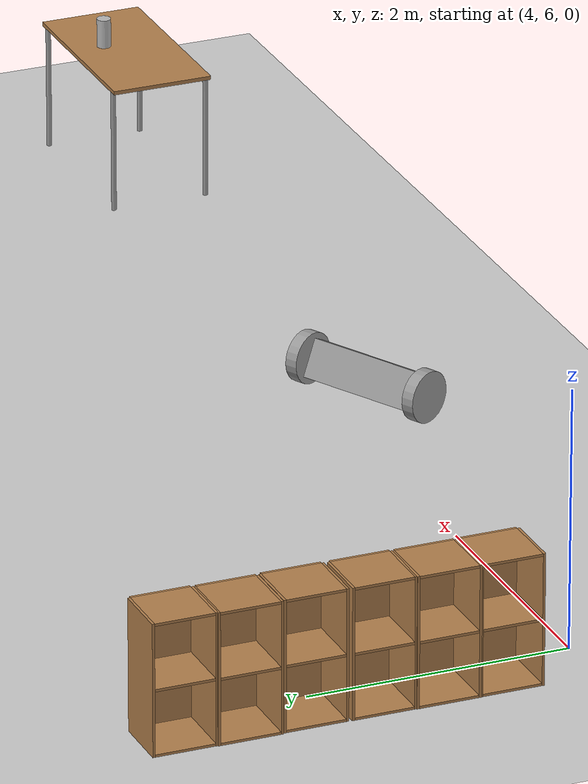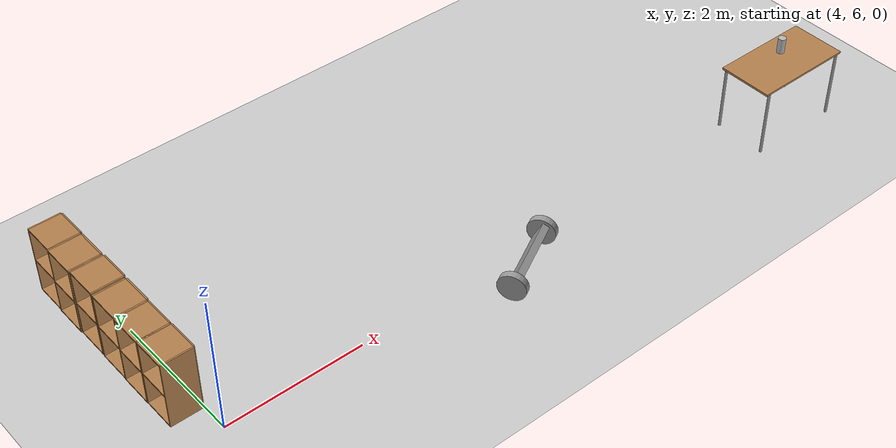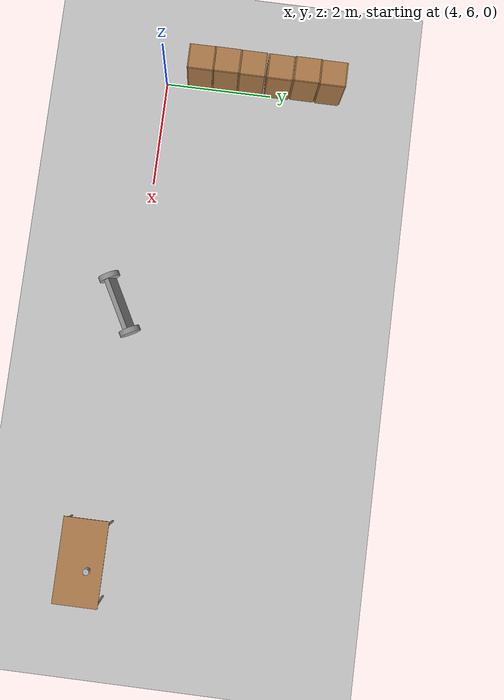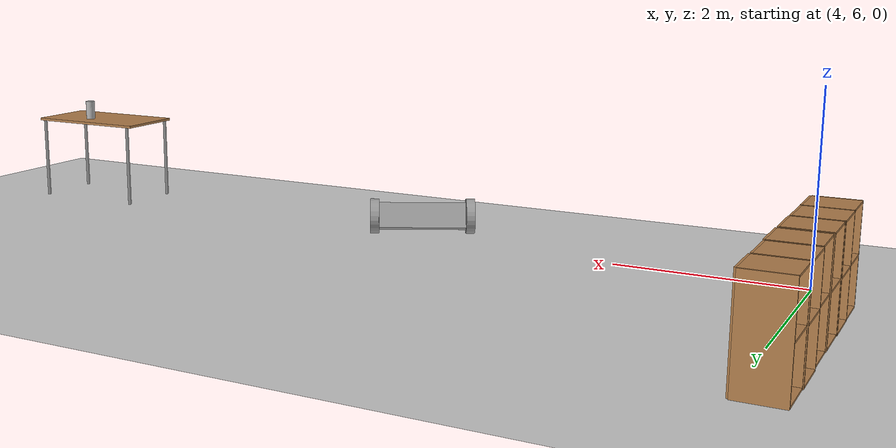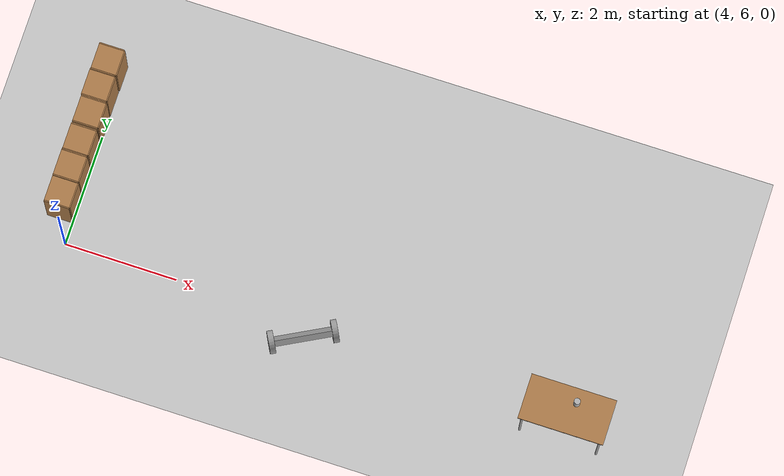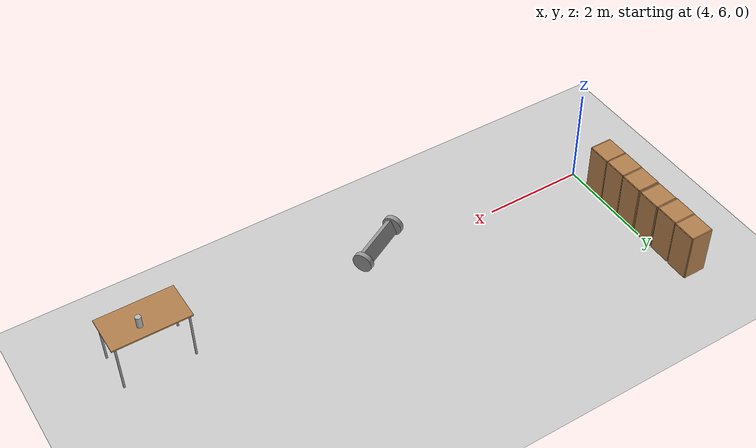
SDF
<sdf version="1.6">
 <world name="default">
  <model name="ground_plane">
   <static>1</static>
   <link name="link">
    <collision name="collision">
     <geometry><plane><normal>0 0 1</normal><size>100 100</size></plane></geometry>
     <surface>
      <contact><collide_bitmask>65535</collide_bitmask></contact>
      <friction><ode><mu>100</mu><mu2>50</mu2></ode></friction>
     </surface>
    </collision>
    <visual name="visual">
     <cast_shadows>0</cast_shadows>
     <geometry><plane><normal>0 0 1</normal><size>100 100</size></plane></geometry>
     <material>
      <script><uri>file://media/materials/scripts/gazebo.material</uri><name>Gazebo/Grey</name></script>
     </material>
    </visual>
   </link>
  </model>
  <model name="robot">
   <link name="link_0">
    <inertial>
     <mass>1</mass>
     <inertia>
      <ixx>0.166667</ixx>
      <ixy>0</ixy>
      <ixz>0</ixz>
      <iyy>0.166667</iyy>
      <iyz>0</iyz>
      <izz>0.166667</izz>
     </inertia>
     <pose>0 0 0.2 0 -0 0</pose>
    </inertial>
    <visual name="visual">
     <geometry><box><size>0.3 1 0.1</size></box></geometry>
     <material>
      <lighting>1</lighting>
      <script><uri>file://media/materials/scripts/gazebo.material</uri><name>Gazebo/Grey</name></script>
      <shader type="pixel"><normal_map>__default__</normal_map></shader>
      <ambient>0.3 0.3 0.3 1</ambient>
      <diffuse>0.7 0.7 0.7 1</diffuse>
      <specular>0.01 0.01 0.01 1</specular>
      <emissive>0 0 0 1</emissive>
     </material>
    </visual>
    <collision name="collision">
     <geometry><box><size>0.3 1 0.1</size></box></geometry>
     <surface>
      <friction>
       <ode><mu>1</mu><mu2>1</mu2><fdir1>0 0 0</fdir1><slip1>0</slip1><slip2>0</slip2></ode>
       <torsional>
        <coefficient>1</coefficient>
        <patch_radius>0</patch_radius>
        <surface_radius>0</surface_radius>
        <use_patch_radius>1</use_patch_radius>
        <ode><slip>0</slip></ode>
       </torsional>
      </friction>
      <bounce><restitution_coefficient>0</restitution_coefficient><threshold>1e+06</threshold></bounce>
      <contact>
       <collide_without_contact>0</collide_without_contact>
       <collide_without_contact_bitmask>1</collide_without_contact_bitmask>
       <collide_bitmask>1</collide_bitmask>
       <ode>
        <soft_cfm>0</soft_cfm>
        <soft_erp>0.2</soft_erp>
        <kp>1e+13</kp>
        <kd>1</kd>
        <max_vel>0.01</max_vel>
        <min_depth>0</min_depth>
       </ode>
       <bullet>
        <split_impulse>1</split_impulse>
        <split_impulse_penetration_threshold>-0.01</split_impulse_penetration_threshold>
        <soft_cfm>0</soft_cfm>
        <soft_erp>0.2</soft_erp>
        <kp>1e+13</kp>
        <kd>1</kd>
       </bullet>
      </contact>
     </surface>
    </collision>
   </link>
   <link name="link_2">
    <pose>0 -0.550019 0 1.5707 -0 0</pose>
    <inertial>
     <mass>1</mass>
     <inertia><ixx>0.145833</ixx><ixy>0</ixy><ixz>0</ixz><iyy>0.145833</iyy><iyz>0</iyz><izz>0.125</izz></inertia>
    </inertial>
    <visual name="visual">
     <geometry><cylinder><radius>0.2</radius><length>0.1</length></cylinder></geometry>
     <material>
      <lighting>1</lighting>
      <script><uri>file://media/materials/scripts/gazebo.material</uri><name>Gazebo/Grey</name></script>
      <shader type="pixel"><normal_map>__default__</normal_map></shader>
      <ambient>0.3 0.3 0.3 1</ambient>
      <diffuse>0.7 0.7 0.7 1</diffuse>
      <specular>0.01 0.01 0.01 1</specular>
      <emissive>0 0 0 1</emissive>
     </material>
    </visual>
    <collision name="collision">
     <geometry><cylinder><radius>0.2</radius><length>0.1</length></cylinder></geometry>
     <surface>
      <friction>
       <ode><mu>1</mu><mu2>1</mu2><fdir1>0 0 0</fdir1><slip1>0</slip1><slip2>0</slip2></ode>
       <torsional>
        <coefficient>1</coefficient>
        <patch_radius>0</patch_radius>
        <surface_radius>0</surface_radius>
        <use_patch_radius>1</use_patch_radius>
        <ode><slip>0</slip></ode>
       </torsional>
      </friction>
      <bounce><restitution_coefficient>0</restitution_coefficient><threshold>1e+06</threshold></bounce>
      <contact>
       <collide_without_contact>0</collide_without_contact>
       <collide_without_contact_bitmask>1</collide_without_contact_bitmask>
       <collide_bitmask>1</collide_bitmask>
       <ode>
        <soft_cfm>0</soft_cfm>
        <soft_erp>0.2</soft_erp>
        <kp>1e+13</kp>
        <kd>1</kd>
        <max_vel>0.01</max_vel>
        <min_depth>0</min_depth>
       </ode>
       <bullet>
        <split_impulse>1</split_impulse>
        <split_impulse_penetration_threshold>-0.01</split_impulse_penetration_threshold>
        <soft_cfm>0</soft_cfm>
        <soft_erp>0.2</soft_erp>
        <kp>1e+13</kp>
        <kd>1</kd>
       </bullet>
      </contact>
     </surface>
    </collision>
   </link>
   <link name="link_2_clone">
    <pose>0 0.550019 0 1.5707 -0 0</pose>
    <inertial>
     <mass>1</mass>
     <inertia><ixx>0.145833</ixx><ixy>0</ixy><ixz>0</ixz><iyy>0.145833</iyy><iyz>0</iyz><izz>0.125</izz></inertia>
    </inertial>
    <visual name="visual">
     <geometry><cylinder><radius>0.2</radius><length>0.1</length></cylinder></geometry>
     <material>
      <lighting>1</lighting>
      <script><uri>file://media/materials/scripts/gazebo.material</uri><name>Gazebo/Grey</name></script>
      <shader type="pixel"><normal_map>__default__</normal_map></shader>
      <ambient>0.3 0.3 0.3 1</ambient>
      <diffuse>0.7 0.7 0.7 1</diffuse>
      <specular>0.01 0.01 0.01 1</specular>
      <emissive>0 0 0 1</emissive>
     </material>
    </visual>
    <collision name="collision">
     <geometry><cylinder><radius>0.2</radius><length>0.1</length></cylinder></geometry>
     <surface>
      <friction>
       <ode><mu>1</mu><mu2>1</mu2><fdir1>0 0 0</fdir1><slip1>0</slip1><slip2>0</slip2></ode>
       <torsional>
        <coefficient>1</coefficient>
        <patch_radius>0</patch_radius>
        <surface_radius>0</surface_radius>
        <use_patch_radius>1</use_patch_radius>
        <ode><slip>0</slip></ode>
       </torsional>
      </friction>
      <bounce><restitution_coefficient>0</restitution_coefficient><threshold>1e+06</threshold></bounce>
      <contact>
       <collide_without_contact>0</collide_without_contact>
       <collide_without_contact_bitmask>1</collide_without_contact_bitmask>
       <collide_bitmask>1</collide_bitmask>
       <ode>
        <soft_cfm>0</soft_cfm>
        <soft_erp>0.2</soft_erp>
        <kp>1e+13</kp>
        <kd>1</kd>
        <max_vel>0.01</max_vel>
        <min_depth>0</min_depth>
       </ode>
       <bullet>
        <split_impulse>1</split_impulse>
        <split_impulse_penetration_threshold>-0.01</split_impulse_penetration_threshold>
        <soft_cfm>0</soft_cfm>
        <soft_erp>0.2</soft_erp>
        <kp>1e+13</kp>
        <kd>1</kd>
       </bullet>
      </contact>
     </surface>
    </collision>
   </link>
   <joint name="link_0_JOINT_0" type="revolute">
    <parent>link_0</parent>
    <child>link_2</child>
    <axis>
     <xyz>0 0 1</xyz>
     <use_parent_model_frame>0</use_parent_model_frame>
     <limit>
      <lower>-1.79769e+308</lower>
      <upper>1.79769e+308</upper>
      <effort>-1</effort>
      <velocity>-1</velocity>
     </limit>
     <dynamics>
      <spring_reference>0</spring_reference>
      <spring_stiffness>0</spring_stiffness>
      <damping>0</damping>
     </dynamics>
    </axis>
    <physics>
     <ode><limit><cfm>0</cfm><erp>0.2</erp></limit><suspension><cfm>0</cfm><erp>0.2</erp></suspension></ode>
    </physics>
   </joint>
   <joint name="link_0_JOINT_1" type="revolute">
    <parent>link_0</parent>
    <child>link_2_clone</child>
    <axis>
     <xyz>0 0 1</xyz>
     <use_parent_model_frame>0</use_parent_model_frame>
     <limit>
      <lower>-1.79769e+308</lower>
      <upper>1.79769e+308</upper>
      <effort>-1</effort>
      <velocity>-1</velocity>
     </limit>
     <dynamics>
      <spring_reference>0</spring_reference>
      <spring_stiffness>0</spring_stiffness>
      <damping>0</damping>
      <friction>0</friction>
     </dynamics>
    </axis>
    <physics>
     <ode><limit><cfm>0</cfm><erp>0.2</erp></limit><suspension><cfm>0</cfm><erp>0.2</erp></suspension></ode>
    </physics>
   </joint>
   <static>0</static>
   <pose>8.3951 5.68813 0.200001 6e-06 -1.10698 -1.07899</pose>
  </model>
  <model name="table">
   <static>1</static>
   <link name="link">
    <collision name="surface">
     <pose>0 0 1 0 -0 0</pose>
     <geometry><box><size>1.5 0.8 0.03</size></box></geometry>
     <surface><friction><ode><mu>0.6</mu><mu2>0.6</mu2></ode></friction></surface>
    </collision>
    <visual name="visual1">
     <pose>0 0 1 0 -0 0</pose>
     <geometry><box><size>1.5 0.8 0.03</size></box></geometry>
     <material>
      <script><uri>file://media/materials/scripts/gazebo.material</uri><name>Gazebo/Wood</name></script>
     </material>
    </visual>
    <collision name="front_left_leg">
     <pose>0.68 0.38 0.5 0 -0 0</pose>
     <geometry><cylinder><radius>0.02</radius><length>1</length></cylinder></geometry>
    </collision>
    <visual name="front_left_leg">
     <pose>0.68 0.38 0.5 0 -0 0</pose>
     <geometry><cylinder><radius>0.02</radius><length>1</length></cylinder></geometry>
     <material>
      <script><uri>file://media/materials/scripts/gazebo.material</uri><name>Gazebo/Grey</name></script>
     </material>
    </visual>
    <collision name="front_right_leg">
     <pose>0.68 -0.38 0.5 0 -0 0</pose>
     <geometry><cylinder><radius>0.02</radius><length>1</length></cylinder></geometry>
    </collision>
    <visual name="front_right_leg">
     <pose>0.68 -0.38 0.5 0 -0 0</pose>
     <geometry><cylinder><radius>0.02</radius><length>1</length></cylinder></geometry>
     <material>
      <script><uri>file://media/materials/scripts/gazebo.material</uri><name>Gazebo/Grey</name></script>
     </material>
    </visual>
    <collision name="back_right_leg">
     <pose>-0.68 -0.38 0.5 0 -0 0</pose>
     <geometry><cylinder><radius>0.02</radius><length>1</length></cylinder></geometry>
    </collision>
    <visual name="back_right_leg">
     <pose>-0.68 -0.38 0.5 0 -0 0</pose>
     <geometry><cylinder><radius>0.02</radius><length>1</length></cylinder></geometry>
     <material>
      <script><uri>file://media/materials/scripts/gazebo.material</uri><name>Gazebo/Grey</name></script>
     </material>
    </visual>
    <collision name="back_left_leg">
     <pose>-0.68 0.38 0.5 0 -0 0</pose>
     <geometry><cylinder><radius>0.02</radius><length>1</length></cylinder></geometry>
    </collision>
    <visual name="back_left_leg">
     <pose>-0.68 0.38 0.5 0 -0 0</pose>
     <geometry><cylinder><radius>0.02</radius><length>1</length></cylinder></geometry>
     <material>
      <script><uri>file://media/materials/scripts/gazebo.material</uri><name>Gazebo/Grey</name></script>
     </material>
    </visual>
   </link>
   <pose>13.0602 5.71724 0 0 -0 0</pose>
  </model>
  <model name="beer">
   <link name="link">
    <pose>0 0 0.115 0 -0 0</pose>
    <inertial>
     <mass>0.39</mass>
     <inertia><ixx>0.00058</ixx><ixy>0</ixy><ixz>0</ixz><iyy>0.00058</iyy><iyz>0</iyz><izz>0.00019</izz></inertia>
    </inertial>
    <collision name="collision">
     <geometry><cylinder><radius>0.055</radius><length>0.23</length></cylinder></geometry>
    </collision>
    <visual name="visual">
     <geometry><cylinder><radius>0.055</radius><length>0.23</length></cylinder></geometry>
     <material>
      <script>
       <uri>model://beer/materials/scripts</uri>
       <uri>model://beer/materials/textures</uri>
       <name>Beer/Diffuse</name>
      </script>
     </material>
    </visual>
   </link>
   <pose>13.1795 5.85442 1.01499 -1e-06 2.7e-05 -9e-06</pose>
  </model>
  <model name="cabinet">
   <static>1</static>
   <link name="cabinet_bottom_plate">
    <inertial>
     <pose>0 0 -1 0 -0 0</pose>
     <inertia><ixx>2.05</ixx><ixy>0</ixy><ixz>0</ixz><iyy>2.05</iyy><iyz>0</iyz><izz>2.05</izz></inertia>
     <mass>25</mass>
    </inertial>
    <collision name="cabinet_bottom_plate_geom">
     <pose>0 0 0.01 0 -0 0</pose>
     <geometry><box><size>0.45 0.45 0.02</size></box></geometry>
    </collision>
    <visual name="cabinet_bottom_plate_geom_visual">
     <pose>0 0 0.01 0 -0 0</pose>
     <geometry><box><size>0.45 0.45 0.02</size></box></geometry>
     <material>
      <script><uri>file://media/materials/scripts/gazebo.material</uri><name>Gazebo/Wood</name></script>
     </material>
    </visual>
    <collision name="cabinet_bottom_plate_geom_cabinet_back_plate">
     <pose>0.235 0 0.51 0 -0 0</pose>
     <geometry><box><size>0.02 0.45 1.02</size></box></geometry>
    </collision>
    <visual name="cabinet_bottom_plate_geom_cabinet_back_plate_visual">
     <pose>0.235 0 0.51 0 -0 0</pose>
     <geometry><box><size>0.02 0.45 1.02</size></box></geometry>
     <material>
      <script><uri>file://media/materials/scripts/gazebo.material</uri><name>Gazebo/Wood</name></script>
     </material>
    </visual>
    <collision name="cabinet_bottom_plate_geom_cabinet_left_plate">
     <pose>0 0.235 0.51 0 -0 0</pose>
     <geometry><box><size>0.45 0.02 1.02</size></box></geometry>
    </collision>
    <visual name="cabinet_bottom_plate_geom_cabinet_left_plate_visual">
     <pose>0 0.235 0.51 0 -0 0</pose>
     <geometry><box><size>0.45 0.02 1.02</size></box></geometry>
     <material>
      <script><uri>file://media/materials/scripts/gazebo.material</uri><name>Gazebo/Wood</name></script>
     </material>
    </visual>
    <collision name="cabinet_bottom_plate_geom_cabinet_middle_plate">
     <pose>0 0 0.51 0 -0 0</pose>
     <geometry><box><size>0.45 0.45 0.02</size></box></geometry>
    </collision>
    <visual name="cabinet_bottom_plate_geom_cabinet_middle_plate_visual">
     <pose>0 0 0.51 0 -0 0</pose>
     <geometry><box><size>0.45 0.45 0.02</size></box></geometry>
     <material>
      <script><uri>file://media/materials/scripts/gazebo.material</uri><name>Gazebo/Wood</name></script>
     </material>
    </visual>
    <collision name="cabinet_bottom_plate_geom_cabinet_right_plate">
     <pose>0 -0.235 0.51 0 -0 0</pose>
     <geometry><box><size>0.45 0.02 1.02</size></box></geometry>
    </collision>
    <visual name="cabinet_bottom_plate_geom_cabinet_right_plate_visual">
     <pose>0 -0.235 0.51 0 -0 0</pose>
     <geometry><box><size>0.45 0.02 1.02</size></box></geometry>
     <material>
      <script><uri>file://media/materials/scripts/gazebo.material</uri><name>Gazebo/Wood</name></script>
     </material>
    </visual>
    <collision name="cabinet_bottom_plate_geom_cabinet_top_plate">
     <pose>0 0 1.01 0 -0 0</pose>
     <geometry><box><size>0.45 0.45 0.02</size></box></geometry>
    </collision>
    <visual name="cabinet_bottom_plate_geom_cabinet_top_plate_visual">
     <pose>0 0 1.01 0 -0 0</pose>
     <geometry><box><size>0.45 0.45 0.02</size></box></geometry>
     <material>
      <script><uri>file://media/materials/scripts/gazebo.material</uri><name>Gazebo/Wood</name></script>
     </material>
    </visual>
   </link>
   <pose>3.76015 6.64203 0 0 -0 0</pose>
  </model>
  <model name="cabinet_clone">
   <static>1</static>
   <link name="cabinet_bottom_plate">
    <inertial>
     <pose>0 0 -1 0 -0 0</pose>
     <inertia><ixx>2.05</ixx><ixy>0</ixy><ixz>0</ixz><iyy>2.05</iyy><iyz>0</iyz><izz>2.05</izz></inertia>
     <mass>25</mass>
    </inertial>
    <collision name="cabinet_bottom_plate_geom">
     <pose>0 0 0.01 0 -0 0</pose>
     <geometry><box><size>0.45 0.45 0.02</size></box></geometry>
    </collision>
    <visual name="cabinet_bottom_plate_geom_visual">
     <pose>0 0 0.01 0 -0 0</pose>
     <geometry><box><size>0.45 0.45 0.02</size></box></geometry>
     <material>
      <script><uri>file://media/materials/scripts/gazebo.material</uri><name>Gazebo/Wood</name></script>
     </material>
    </visual>
    <collision name="cabinet_bottom_plate_geom_cabinet_back_plate">
     <pose>0.235 0 0.51 0 -0 0</pose>
     <geometry><box><size>0.02 0.45 1.02</size></box></geometry>
    </collision>
    <visual name="cabinet_bottom_plate_geom_cabinet_back_plate_visual">
     <pose>0.235 0 0.51 0 -0 0</pose>
     <geometry><box><size>0.02 0.45 1.02</size></box></geometry>
     <material>
      <script><uri>file://media/materials/scripts/gazebo.material</uri><name>Gazebo/Wood</name></script>
     </material>
    </visual>
    <collision name="cabinet_bottom_plate_geom_cabinet_left_plate">
     <pose>0 0.235 0.51 0 -0 0</pose>
     <geometry><box><size>0.45 0.02 1.02</size></box></geometry>
    </collision>
    <visual name="cabinet_bottom_plate_geom_cabinet_left_plate_visual">
     <pose>0 0.235 0.51 0 -0 0</pose>
     <geometry><box><size>0.45 0.02 1.02</size></box></geometry>
     <material>
      <script><uri>file://media/materials/scripts/gazebo.material</uri><name>Gazebo/Wood</name></script>
     </material>
    </visual>
    <collision name="cabinet_bottom_plate_geom_cabinet_middle_plate">
     <pose>0 0 0.51 0 -0 0</pose>
     <geometry><box><size>0.45 0.45 0.02</size></box></geometry>
    </collision>
    <visual name="cabinet_bottom_plate_geom_cabinet_middle_plate_visual">
     <pose>0 0 0.51 0 -0 0</pose>
     <geometry><box><size>0.45 0.45 0.02</size></box></geometry>
     <material>
      <script><uri>file://media/materials/scripts/gazebo.material</uri><name>Gazebo/Wood</name></script>
     </material>
    </visual>
    <collision name="cabinet_bottom_plate_geom_cabinet_right_plate">
     <pose>0 -0.235 0.51 0 -0 0</pose>
     <geometry><box><size>0.45 0.02 1.02</size></box></geometry>
    </collision>
    <visual name="cabinet_bottom_plate_geom_cabinet_right_plate_visual">
     <pose>0 -0.235 0.51 0 -0 0</pose>
     <geometry><box><size>0.45 0.02 1.02</size></box></geometry>
     <material>
      <script><uri>file://media/materials/scripts/gazebo.material</uri><name>Gazebo/Wood</name></script>
     </material>
    </visual>
    <collision name="cabinet_bottom_plate_geom_cabinet_top_plate">
     <pose>0 0 1.01 0 -0 0</pose>
     <geometry><box><size>0.45 0.45 0.02</size></box></geometry>
    </collision>
    <visual name="cabinet_bottom_plate_geom_cabinet_top_plate_visual">
     <pose>0 0 1.01 0 -0 0</pose>
     <geometry><box><size>0.45 0.45 0.02</size></box></geometry>
     <material>
      <script><uri>file://media/materials/scripts/gazebo.material</uri><name>Gazebo/Wood</name></script>
     </material>
    </visual>
   </link>
   <pose>3.75696 7.12211 0 0 -0 0</pose>
  </model>
  <model name="cabinet_clone_0">
   <static>1</static>
   <link name="cabinet_bottom_plate">
    <inertial>
     <pose>0 0 -1 0 -0 0</pose>
     <inertia><ixx>2.05</ixx><ixy>0</ixy><ixz>0</ixz><iyy>2.05</iyy><iyz>0</iyz><izz>2.05</izz></inertia>
     <mass>25</mass>
    </inertial>
    <collision name="cabinet_bottom_plate_geom">
     <pose>0 0 0.01 0 -0 0</pose>
     <geometry><box><size>0.45 0.45 0.02</size></box></geometry>
    </collision>
    <visual name="cabinet_bottom_plate_geom_visual">
     <pose>0 0 0.01 0 -0 0</pose>
     <geometry><box><size>0.45 0.45 0.02</size></box></geometry>
     <material>
      <script><uri>file://media/materials/scripts/gazebo.material</uri><name>Gazebo/Wood</name></script>
     </material>
    </visual>
    <collision name="cabinet_bottom_plate_geom_cabinet_back_plate">
     <pose>0.235 0 0.51 0 -0 0</pose>
     <geometry><box><size>0.02 0.45 1.02</size></box></geometry>
    </collision>
    <visual name="cabinet_bottom_plate_geom_cabinet_back_plate_visual">
     <pose>0.235 0 0.51 0 -0 0</pose>
     <geometry><box><size>0.02 0.45 1.02</size></box></geometry>
     <material>
      <script><uri>file://media/materials/scripts/gazebo.material</uri><name>Gazebo/Wood</name></script>
     </material>
    </visual>
    <collision name="cabinet_bottom_plate_geom_cabinet_left_plate">
     <pose>0 0.235 0.51 0 -0 0</pose>
     <geometry><box><size>0.45 0.02 1.02</size></box></geometry>
    </collision>
    <visual name="cabinet_bottom_plate_geom_cabinet_left_plate_visual">
     <pose>0 0.235 0.51 0 -0 0</pose>
     <geometry><box><size>0.45 0.02 1.02</size></box></geometry>
     <material>
      <script><uri>file://media/materials/scripts/gazebo.material</uri><name>Gazebo/Wood</name></script>
     </material>
    </visual>
    <collision name="cabinet_bottom_plate_geom_cabinet_middle_plate">
     <pose>0 0 0.51 0 -0 0</pose>
     <geometry><box><size>0.45 0.45 0.02</size></box></geometry>
    </collision>
    <visual name="cabinet_bottom_plate_geom_cabinet_middle_plate_visual">
     <pose>0 0 0.51 0 -0 0</pose>
     <geometry><box><size>0.45 0.45 0.02</size></box></geometry>
     <material>
      <script><uri>file://media/materials/scripts/gazebo.material</uri><name>Gazebo/Wood</name></script>
     </material>
    </visual>
    <collision name="cabinet_bottom_plate_geom_cabinet_right_plate">
     <pose>0 -0.235 0.51 0 -0 0</pose>
     <geometry><box><size>0.45 0.02 1.02</size></box></geometry>
    </collision>
    <visual name="cabinet_bottom_plate_geom_cabinet_right_plate_visual">
     <pose>0 -0.235 0.51 0 -0 0</pose>
     <geometry><box><size>0.45 0.02 1.02</size></box></geometry>
     <material>
      <script><uri>file://media/materials/scripts/gazebo.material</uri><name>Gazebo/Wood</name></script>
     </material>
    </visual>
    <collision name="cabinet_bottom_plate_geom_cabinet_top_plate">
     <pose>0 0 1.01 0 -0 0</pose>
     <geometry><box><size>0.45 0.45 0.02</size></box></geometry>
    </collision>
    <visual name="cabinet_bottom_plate_geom_cabinet_top_plate_visual">
     <pose>0 0 1.01 0 -0 0</pose>
     <geometry><box><size>0.45 0.45 0.02</size></box></geometry>
     <material>
      <script><uri>file://media/materials/scripts/gazebo.material</uri><name>Gazebo/Wood</name></script>
     </material>
    </visual>
   </link>
   <pose>3.76265 7.60728 0 0 -0 0</pose>
  </model>
  <model name="cabinet_clone_1">
   <static>1</static>
   <link name="cabinet_bottom_plate">
    <inertial>
     <pose>0 0 -1 0 -0 0</pose>
     <inertia><ixx>2.05</ixx><ixy>0</ixy><ixz>0</ixz><iyy>2.05</iyy><iyz>0</iyz><izz>2.05</izz></inertia>
     <mass>25</mass>
    </inertial>
    <collision name="cabinet_bottom_plate_geom">
     <pose>0 0 0.01 0 -0 0</pose>
     <geometry><box><size>0.45 0.45 0.02</size></box></geometry>
    </collision>
    <visual name="cabinet_bottom_plate_geom_visual">
     <pose>0 0 0.01 0 -0 0</pose>
     <geometry><box><size>0.45 0.45 0.02</size></box></geometry>
     <material>
      <script><uri>file://media/materials/scripts/gazebo.material</uri><name>Gazebo/Wood</name></script>
     </material>
    </visual>
    <collision name="cabinet_bottom_plate_geom_cabinet_back_plate">
     <pose>0.235 0 0.51 0 -0 0</pose>
     <geometry><box><size>0.02 0.45 1.02</size></box></geometry>
    </collision>
    <visual name="cabinet_bottom_plate_geom_cabinet_back_plate_visual">
     <pose>0.235 0 0.51 0 -0 0</pose>
     <geometry><box><size>0.02 0.45 1.02</size></box></geometry>
     <material>
      <script><uri>file://media/materials/scripts/gazebo.material</uri><name>Gazebo/Wood</name></script>
     </material>
    </visual>
    <collision name="cabinet_bottom_plate_geom_cabinet_left_plate">
     <pose>0 0.235 0.51 0 -0 0</pose>
     <geometry><box><size>0.45 0.02 1.02</size></box></geometry>
    </collision>
    <visual name="cabinet_bottom_plate_geom_cabinet_left_plate_visual">
     <pose>0 0.235 0.51 0 -0 0</pose>
     <geometry><box><size>0.45 0.02 1.02</size></box></geometry>
     <material>
      <script><uri>file://media/materials/scripts/gazebo.material</uri><name>Gazebo/Wood</name></script>
     </material>
    </visual>
    <collision name="cabinet_bottom_plate_geom_cabinet_middle_plate">
     <pose>0 0 0.51 0 -0 0</pose>
     <geometry><box><size>0.45 0.45 0.02</size></box></geometry>
    </collision>
    <visual name="cabinet_bottom_plate_geom_cabinet_middle_plate_visual">
     <pose>0 0 0.51 0 -0 0</pose>
     <geometry><box><size>0.45 0.45 0.02</size></box></geometry>
     <material>
      <script><uri>file://media/materials/scripts/gazebo.material</uri><name>Gazebo/Wood</name></script>
     </material>
    </visual>
    <collision name="cabinet_bottom_plate_geom_cabinet_right_plate">
     <pose>0 -0.235 0.51 0 -0 0</pose>
     <geometry><box><size>0.45 0.02 1.02</size></box></geometry>
    </collision>
    <visual name="cabinet_bottom_plate_geom_cabinet_right_plate_visual">
     <pose>0 -0.235 0.51 0 -0 0</pose>
     <geometry><box><size>0.45 0.02 1.02</size></box></geometry>
     <material>
      <script><uri>file://media/materials/scripts/gazebo.material</uri><name>Gazebo/Wood</name></script>
     </material>
    </visual>
    <collision name="cabinet_bottom_plate_geom_cabinet_top_plate">
     <pose>0 0 1.01 0 -0 0</pose>
     <geometry><box><size>0.45 0.45 0.02</size></box></geometry>
    </collision>
    <visual name="cabinet_bottom_plate_geom_cabinet_top_plate_visual">
     <pose>0 0 1.01 0 -0 0</pose>
     <geometry><box><size>0.45 0.45 0.02</size></box></geometry>
     <material>
      <script><uri>file://media/materials/scripts/gazebo.material</uri><name>Gazebo/Wood</name></script>
     </material>
    </visual>
   </link>
   <pose>3.76764 8.11899 0 0 -0 0</pose>
  </model>
  <model name="cabinet_clone_2">
   <static>1</static>
   <link name="cabinet_bottom_plate">
    <inertial>
     <pose>0 0 -1 0 -0 0</pose>
     <inertia><ixx>2.05</ixx><ixy>0</ixy><ixz>0</ixz><iyy>2.05</iyy><iyz>0</iyz><izz>2.05</izz></inertia>
     <mass>25</mass>
    </inertial>
    <collision name="cabinet_bottom_plate_geom">
     <pose>0 0 0.01 0 -0 0</pose>
     <geometry><box><size>0.45 0.45 0.02</size></box></geometry>
    </collision>
    <visual name="cabinet_bottom_plate_geom_visual">
     <pose>0 0 0.01 0 -0 0</pose>
     <geometry><box><size>0.45 0.45 0.02</size></box></geometry>
     <material>
      <script><uri>file://media/materials/scripts/gazebo.material</uri><name>Gazebo/Wood</name></script>
     </material>
    </visual>
    <collision name="cabinet_bottom_plate_geom_cabinet_back_plate">
     <pose>0.235 0 0.51 0 -0 0</pose>
     <geometry><box><size>0.02 0.45 1.02</size></box></geometry>
    </collision>
    <visual name="cabinet_bottom_plate_geom_cabinet_back_plate_visual">
     <pose>0.235 0 0.51 0 -0 0</pose>
     <geometry><box><size>0.02 0.45 1.02</size></box></geometry>
     <material>
      <script><uri>file://media/materials/scripts/gazebo.material</uri><name>Gazebo/Wood</name></script>
     </material>
    </visual>
    <collision name="cabinet_bottom_plate_geom_cabinet_left_plate">
     <pose>0 0.235 0.51 0 -0 0</pose>
     <geometry><box><size>0.45 0.02 1.02</size></box></geometry>
    </collision>
    <visual name="cabinet_bottom_plate_geom_cabinet_left_plate_visual">
     <pose>0 0.235 0.51 0 -0 0</pose>
     <geometry><box><size>0.45 0.02 1.02</size></box></geometry>
     <material>
      <script><uri>file://media/materials/scripts/gazebo.material</uri><name>Gazebo/Wood</name></script>
     </material>
    </visual>
    <collision name="cabinet_bottom_plate_geom_cabinet_middle_plate">
     <pose>0 0 0.51 0 -0 0</pose>
     <geometry><box><size>0.45 0.45 0.02</size></box></geometry>
    </collision>
    <visual name="cabinet_bottom_plate_geom_cabinet_middle_plate_visual">
     <pose>0 0 0.51 0 -0 0</pose>
     <geometry><box><size>0.45 0.45 0.02</size></box></geometry>
     <material>
      <script><uri>file://media/materials/scripts/gazebo.material</uri><name>Gazebo/Wood</name></script>
     </material>
    </visual>
    <collision name="cabinet_bottom_plate_geom_cabinet_right_plate">
     <pose>0 -0.235 0.51 0 -0 0</pose>
     <geometry><box><size>0.45 0.02 1.02</size></box></geometry>
    </collision>
    <visual name="cabinet_bottom_plate_geom_cabinet_right_plate_visual">
     <pose>0 -0.235 0.51 0 -0 0</pose>
     <geometry><box><size>0.45 0.02 1.02</size></box></geometry>
     <material>
      <script><uri>file://media/materials/scripts/gazebo.material</uri><name>Gazebo/Wood</name></script>
     </material>
    </visual>
    <collision name="cabinet_bottom_plate_geom_cabinet_top_plate">
     <pose>0 0 1.01 0 -0 0</pose>
     <geometry><box><size>0.45 0.45 0.02</size></box></geometry>
    </collision>
    <visual name="cabinet_bottom_plate_geom_cabinet_top_plate_visual">
     <pose>0 0 1.01 0 -0 0</pose>
     <geometry><box><size>0.45 0.45 0.02</size></box></geometry>
     <material>
      <script><uri>file://media/materials/scripts/gazebo.material</uri><name>Gazebo/Wood</name></script>
     </material>
    </visual>
   </link>
   <pose>3.75705 8.61178 0 0 -0 0</pose>
  </model>
  <model name="cabinet_clone_3">
   <static>1</static>
   <link name="cabinet_bottom_plate">
    <inertial>
     <pose>0 0 -1 0 -0 0</pose>
     <inertia><ixx>2.05</ixx><ixy>0</ixy><ixz>0</ixz><iyy>2.05</iyy><iyz>0</iyz><izz>2.05</izz></inertia>
     <mass>25</mass>
    </inertial>
    <collision name="cabinet_bottom_plate_geom">
     <pose>0 0 0.01 0 -0 0</pose>
     <geometry><box><size>0.45 0.45 0.02</size></box></geometry>
    </collision>
    <visual name="cabinet_bottom_plate_geom_visual">
     <pose>0 0 0.01 0 -0 0</pose>
     <geometry><box><size>0.45 0.45 0.02</size></box></geometry>
     <material>
      <script><uri>file://media/materials/scripts/gazebo.material</uri><name>Gazebo/Wood</name></script>
     </material>
    </visual>
    <collision name="cabinet_bottom_plate_geom_cabinet_back_plate">
     <pose>0.235 0 0.51 0 -0 0</pose>
     <geometry><box><size>0.02 0.45 1.02</size></box></geometry>
    </collision>
    <visual name="cabinet_bottom_plate_geom_cabinet_back_plate_visual">
     <pose>0.235 0 0.51 0 -0 0</pose>
     <geometry><box><size>0.02 0.45 1.02</size></box></geometry>
     <material>
      <script><uri>file://media/materials/scripts/gazebo.material</uri><name>Gazebo/Wood</name></script>
     </material>
    </visual>
    <collision name="cabinet_bottom_plate_geom_cabinet_left_plate">
     <pose>0 0.235 0.51 0 -0 0</pose>
     <geometry><box><size>0.45 0.02 1.02</size></box></geometry>
    </collision>
    <visual name="cabinet_bottom_plate_geom_cabinet_left_plate_visual">
     <pose>0 0.235 0.51 0 -0 0</pose>
     <geometry><box><size>0.45 0.02 1.02</size></box></geometry>
     <material>
      <script><uri>file://media/materials/scripts/gazebo.material</uri><name>Gazebo/Wood</name></script>
     </material>
    </visual>
    <collision name="cabinet_bottom_plate_geom_cabinet_middle_plate">
     <pose>0 0 0.51 0 -0 0</pose>
     <geometry><box><size>0.45 0.45 0.02</size></box></geometry>
    </collision>
    <visual name="cabinet_bottom_plate_geom_cabinet_middle_plate_visual">
     <pose>0 0 0.51 0 -0 0</pose>
     <geometry><box><size>0.45 0.45 0.02</size></box></geometry>
     <material>
      <script><uri>file://media/materials/scripts/gazebo.material</uri><name>Gazebo/Wood</name></script>
     </material>
    </visual>
    <collision name="cabinet_bottom_plate_geom_cabinet_right_plate">
     <pose>0 -0.235 0.51 0 -0 0</pose>
     <geometry><box><size>0.45 0.02 1.02</size></box></geometry>
    </collision>
    <visual name="cabinet_bottom_plate_geom_cabinet_right_plate_visual">
     <pose>0 -0.235 0.51 0 -0 0</pose>
     <geometry><box><size>0.45 0.02 1.02</size></box></geometry>
     <material>
      <script><uri>file://media/materials/scripts/gazebo.material</uri><name>Gazebo/Wood</name></script>
     </material>
    </visual>
    <collision name="cabinet_bottom_plate_geom_cabinet_top_plate">
     <pose>0 0 1.01 0 -0 0</pose>
     <geometry><box><size>0.45 0.45 0.02</size></box></geometry>
    </collision>
    <visual name="cabinet_bottom_plate_geom_cabinet_top_plate_visual">
     <pose>0 0 1.01 0 -0 0</pose>
     <geometry><box><size>0.45 0.45 0.02</size></box></geometry>
     <material>
      <script><uri>file://media/materials/scripts/gazebo.material</uri><name>Gazebo/Wood</name></script>
     </material>
    </visual>
   </link>
   <pose>3.76519 9.09514 0 0 -0 0</pose>
  </model>
 </world>
</sdf>
